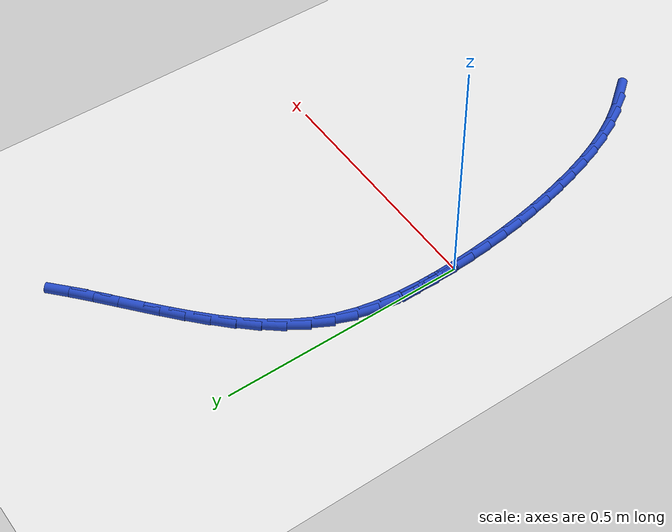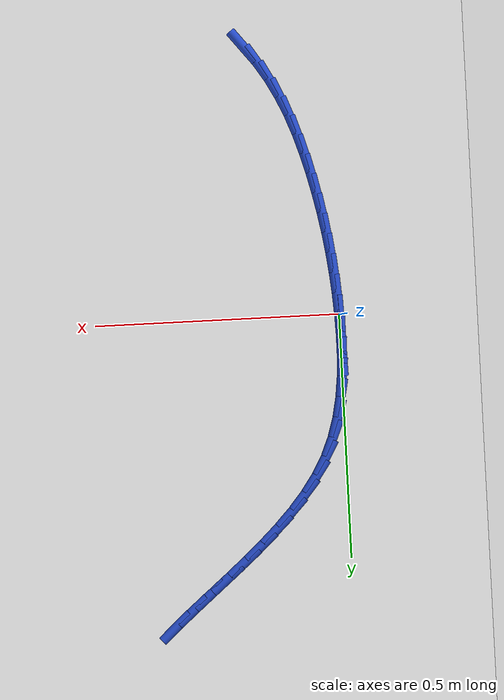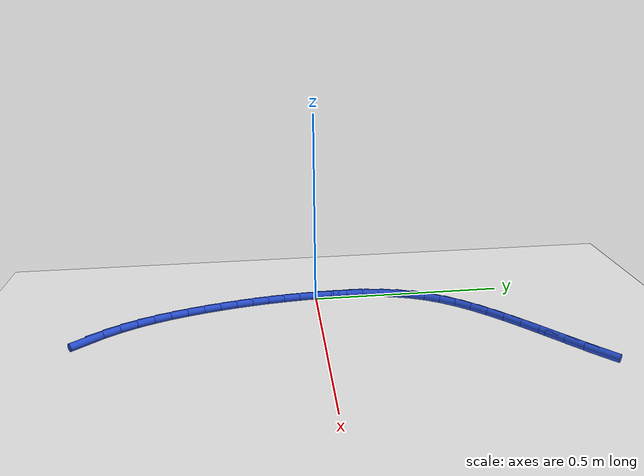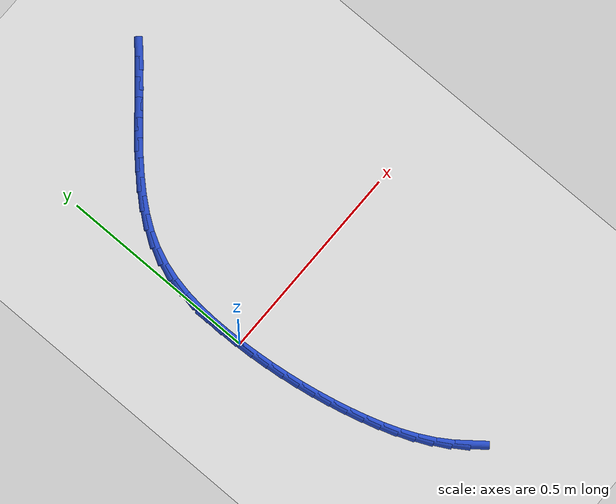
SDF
<sdf version="1.6">
 <world name="default">
  <model name="ground_plane">
   <static>1</static>
   <link name="link">
    <collision name="collision">
     <geometry><plane><normal>0 0 1</normal><size>100 100</size></plane></geometry>
     <surface><friction><ode><mu>100</mu><mu2>50</mu2></ode></friction></surface>
    </collision>
    <visual name="visual">
     <cast_shadows>0</cast_shadows>
     <geometry><plane><normal>0 0 1</normal><size>100 100</size></plane></geometry>
     <material>
      <script><uri>file://media/materials/scripts/gazebo.material</uri><name>Gazebo/WhiteGlow</name></script>
     </material>
    </visual>
   </link>
  </model>
  <model name="line">
   <link name="link_0">
    <pose>-1.0842021724855044e-17 3.469446951953614e-17 0.01 0 1.57 -1.5368988126078118</pose>
    <collision name="collision">
     <geometry><cylinder><radius>0.01</radius><length>0.08</length></cylinder></geometry>
    </collision>
    <visual name="visual">
     <material>
      <script><name>Gazebo/Blue</name><uri>file://media/materials/scripts/gazebo.material</uri></script>
     </material>
     <geometry><cylinder><radius>0.01</radius><length>0.08</length></cylinder></geometry>
    </visual>
   </link>
   <link name="link_1">
    <pose>-0.0014516715959143498 0.04280890731460777 0.01 0 1.57 1.5659585013162598</pose>
    <collision name="collision">
     <geometry><cylinder><radius>0.01</radius><length>0.08</length></cylinder></geometry>
    </collision>
    <visual name="visual">
     <material>
      <script><name>Gazebo/Blue</name><uri>file://media/materials/scripts/gazebo.material</uri></script>
     </material>
     <geometry><cylinder><radius>0.01</radius><length>0.08</length></cylinder></geometry>
    </visual>
   </link>
   <link name="link_2">
    <pose>-0.0012441022626019952 0.08571407511581058 0.01 0 1.57 1.5150028420982957</pose>
    <collision name="collision">
     <geometry><cylinder><radius>0.01</radius><length>0.08</length></cylinder></geometry>
    </collision>
    <visual name="visual">
     <material>
      <script><name>Gazebo/Blue</name><uri>file://media/materials/scripts/gazebo.material</uri></script>
     </material>
     <geometry><cylinder><radius>0.01</radius><length>0.08</length></cylinder></geometry>
    </visual>
   </link>
   <link name="link_3">
    <pose>0.0011413706140954126 0.1284251034618987 0.01 0 1.57 1.451020490607723</pose>
    <collision name="collision">
     <geometry><cylinder><radius>0.01</radius><length>0.08</length></cylinder></geometry>
    </collision>
    <visual name="visual">
     <material>
      <script><name>Gazebo/Blue</name><uri>file://media/materials/scripts/gazebo.material</uri></script>
     </material>
     <geometry><cylinder><radius>0.01</radius><length>0.08</length></cylinder></geometry>
    </visual>
   </link>
   <link name="link_4">
    <pose>0.006223409648336242 0.1706515924111626 0.01 0 1.57 1.373239372330549</pose>
    <collision name="collision">
     <geometry><cylinder><radius>0.01</radius><length>0.08</length></cylinder></geometry>
    </collision>
    <visual name="visual">
     <material>
      <script><name>Gazebo/Blue</name><uri>file://media/materials/scripts/gazebo.material</uri></script>
     </material>
     <geometry><cylinder><radius>0.01</radius><length>0.08</length></cylinder></geometry>
    </visual>
   </link>
   <link name="link_5">
    <pose>0.014520677454278857 0.2121031420218925 0.01 0 1.57 1.2812648131036974</pose>
    <collision name="collision">
     <geometry><cylinder><radius>0.01</radius><length>0.08</length></cylinder></geometry>
    </collision>
    <visual name="visual">
     <material>
      <script><name>Gazebo/Blue</name><uri>file://media/materials/scripts/gazebo.material</uri></script>
     </material>
     <geometry><cylinder><radius>0.01</radius><length>0.08</length></cylinder></geometry>
    </visual>
   </link>
   <link name="link_6">
    <pose>0.026551836646081607 0.2524893523523788 0.01 0 1.57 1.175546476682977</pose>
    <collision name="collision">
     <geometry><cylinder><radius>0.01</radius><length>0.08</length></cylinder></geometry>
    </collision>
    <visual name="visual">
     <material>
      <script><name>Gazebo/Blue</name><uri>file://media/materials/scripts/gazebo.material</uri></script>
     </material>
     <geometry><cylinder><radius>0.01</radius><length>0.08</length></cylinder></geometry>
    </visual>
   </link>
   <link name="link_7">
    <pose>0.04283554983790288 0.29151982346091176 0.01 0 1.57 1.0616055408451468</pose>
    <collision name="collision">
     <geometry><cylinder><radius>0.01</radius><length>0.08</length></cylinder></geometry>
    </collision>
    <visual name="visual">
     <material>
      <script><name>Gazebo/Blue</name><uri>file://media/materials/scripts/gazebo.material</uri></script>
     </material>
     <geometry><cylinder><radius>0.01</radius><length>0.08</length></cylinder></geometry>
    </visual>
   </link>
   <link name="link_8">
    <pose>0.0637421741857241 0.32896697450251255 0.01 0 1.57 0.9607841583377517</pose>
    <collision name="collision">
     <geometry><cylinder><radius>0.01</radius><length>0.08</length></cylinder></geometry>
    </collision>
    <visual name="visual">
     <material>
      <script><name>Gazebo/Blue</name><uri>file://media/materials/scripts/gazebo.material</uri></script>
     </material>
     <geometry><cylinder><radius>0.01</radius><length>0.08</length></cylinder></geometry>
    </visual>
   </link>
   <link name="link_9">
    <pose>0.08887635882780928 0.36492756256705516 0.01 0 1.57 0.8790603935980738</pose>
    <collision name="collision">
     <geometry><cylinder><radius>0.01</radius><length>0.08</length></cylinder></geometry>
    </collision>
    <visual name="visual">
     <material>
      <script><name>Gazebo/Blue</name><uri>file://media/materials/scripts/gazebo.material</uri></script>
     </material>
     <geometry><cylinder><radius>0.01</radius><length>0.08</length></cylinder></geometry>
    </visual>
   </link>
   <link name="link_10">
    <pose>0.11759635489456768 0.39960271379785206 0.01 0 1.57 0.8149191896149264</pose>
    <collision name="collision">
     <geometry><cylinder><radius>0.01</radius><length>0.08</length></cylinder></geometry>
    </collision>
    <visual name="visual">
     <material>
      <script><name>Gazebo/Blue</name><uri>file://media/materials/scripts/gazebo.material</uri></script>
     </material>
     <geometry><cylinder><radius>0.01</radius><length>0.08</length></cylinder></geometry>
    </visual>
   </link>
   <link name="link_11">
    <pose>0.14926029587340603 0.43319360416933617 0.01 0 1.57 0.7665292209427014</pose>
    <collision name="collision">
     <geometry><cylinder><radius>0.01</radius><length>0.08</length></cylinder></geometry>
    </collision>
    <visual name="visual">
     <material>
      <script><name>Gazebo/Blue</name><uri>file://media/materials/scripts/gazebo.material</uri></script>
     </material>
     <geometry><cylinder><radius>0.01</radius><length>0.08</length></cylinder></geometry>
    </visual>
   </link>
   <link name="link_12">
    <pose>0.18322631525173097 0.46590140965594046 0.01 0 1.57 0.7322299686839594</pose>
    <collision name="collision">
     <geometry><cylinder><radius>0.01</radius><length>0.08</length></cylinder></geometry>
    </collision>
    <visual name="visual">
     <material>
      <script><name>Gazebo/Blue</name><uri>file://media/materials/scripts/gazebo.material</uri></script>
     </material>
     <geometry><cylinder><radius>0.01</radius><length>0.08</length></cylinder></geometry>
    </visual>
   </link>
   <link name="link_13">
    <pose>0.21885254651694955 0.4979273062320981 0.01 0 1.57 0.7107544021208096</pose>
    <collision name="collision">
     <geometry><cylinder><radius>0.01</radius><length>0.08</length></cylinder></geometry>
    </collision>
    <visual name="visual">
     <material>
      <script><name>Gazebo/Blue</name><uri>file://media/materials/scripts/gazebo.material</uri></script>
     </material>
     <geometry><cylinder><radius>0.01</radius><length>0.08</length></cylinder></geometry>
    </visual>
   </link>
   <link name="link_14">
    <pose>0.2554971231564685 0.529472469872242 0.01 0 1.57 0.7013132477878615</pose>
    <collision name="collision">
     <geometry><cylinder><radius>0.01</radius><length>0.08</length></cylinder></geometry>
    </collision>
    <visual name="visual">
     <material>
      <script><name>Gazebo/Blue</name><uri>file://media/materials/scripts/gazebo.material</uri></script>
     </material>
     <geometry><cylinder><radius>0.01</radius><length>0.08</length></cylinder></geometry>
    </visual>
   </link>
   <link name="link_15">
    <pose>0.2925181786576945 0.5607380765508049 0.01 0 1.57 0.7036232488913202</pose>
    <collision name="collision">
     <geometry><cylinder><radius>0.01</radius><length>0.08</length></cylinder></geometry>
    </collision>
    <visual name="visual">
     <material>
      <script><name>Gazebo/Blue</name><uri>file://media/materials/scripts/gazebo.material</uri></script>
     </material>
     <geometry><cylinder><radius>0.01</radius><length>0.08</length></cylinder></geometry>
    </visual>
   </link>
   <link name="link_16">
    <pose>0.32927384650803443 0.5919253022422201 0.01 0 1.57 0.7179233418604293</pose>
    <collision name="collision">
     <geometry><cylinder><radius>0.01</radius><length>0.08</length></cylinder></geometry>
    </collision>
    <visual name="visual">
     <material>
      <script><name>Gazebo/Blue</name><uri>file://media/materials/scripts/gazebo.material</uri></script>
     </material>
     <geometry><cylinder><radius>0.01</radius><length>0.08</length></cylinder></geometry>
    </visual>
   </link>
   <link name="link_17">
    <pose>0.365122260194895 0.6232353229209202 0.01 0 1.57 0.7449959446812255</pose>
    <collision name="collision">
     <geometry><cylinder><radius>0.01</radius><length>0.08</length></cylinder></geometry>
    </collision>
    <visual name="visual">
     <material>
      <script><name>Gazebo/Blue</name><uri>file://media/materials/scripts/gazebo.material</uri></script>
     </material>
     <geometry><cylinder><radius>0.01</radius><length>0.08</length></cylinder></geometry>
    </visual>
   </link>
   <link name="link_196">
    <pose>0.1688625292400144 -0.5577887529311956 0.01 0 1.57 -0.9041922956521972</pose>
    <collision name="collision">
     <geometry><cylinder><radius>0.01</radius><length>0.08</length></cylinder></geometry>
    </collision>
    <visual name="visual">
     <material>
      <script><name>Gazebo/Blue</name><uri>file://media/materials/scripts/gazebo.material</uri></script>
     </material>
     <geometry><cylinder><radius>0.01</radius><length>0.08</length></cylinder></geometry>
    </visual>
   </link>
   <link name="link_197">
    <pose>0.14220924033724142 -0.5239106753382171 0.01 0 1.57 -0.9978337761902151</pose>
    <collision name="collision">
     <geometry><cylinder><radius>0.01</radius><length>0.08</length></cylinder></geometry>
    </collision>
    <visual name="visual">
     <material>
      <script><name>Gazebo/Blue</name><uri>file://media/materials/scripts/gazebo.material</uri></script>
     </material>
     <geometry><cylinder><radius>0.01</radius><length>0.08</length></cylinder></geometry>
    </visual>
   </link>
   <link name="link_198">
    <pose>0.11912864292000744 -0.4881354672316448 0.01 0 1.57 -1.081473967997721</pose>
    <collision name="collision">
     <geometry><cylinder><radius>0.01</radius><length>0.08</length></cylinder></geometry>
    </collision>
    <visual name="visual">
     <material>
      <script><name>Gazebo/Blue</name><uri>file://media/materials/scripts/gazebo.material</uri></script>
     </material>
     <geometry><cylinder><radius>0.01</radius><length>0.08</length></cylinder></geometry>
    </visual>
   </link>
   <link name="link_199">
    <pose>0.09922705896481115 -0.4507628659768967 0.01 0 1.57 -1.1540961151325655</pose>
    <collision name="collision">
     <geometry><cylinder><radius>0.01</radius><length>0.08</length></cylinder></geometry>
    </collision>
    <visual name="visual">
     <material>
      <script><name>Gazebo/Blue</name><uri>file://media/materials/scripts/gazebo.material</uri></script>
     </material>
     <geometry><cylinder><radius>0.01</radius><length>0.08</length></cylinder></geometry>
    </visual>
   </link>
   <link name="link_200">
    <pose>0.08211081044815109 -0.41209260893939126 0.01 0 1.57 -1.2153665389309822</pose>
    <collision name="collision">
     <geometry><cylinder><radius>0.01</radius><length>0.08</length></cylinder></geometry>
    </collision>
    <visual name="visual">
     <material>
      <script><name>Gazebo/Blue</name><uri>file://media/materials/scripts/gazebo.material</uri></script>
     </material>
     <geometry><cylinder><radius>0.01</radius><length>0.08</length></cylinder></geometry>
    </visual>
   </link>
   <link name="link_201">
    <pose>0.0673862193465258 -0.3724244334845463 0.01 0 1.57 -1.2653828971131171</pose>
    <collision name="collision">
     <geometry><cylinder><radius>0.01</radius><length>0.08</length></cylinder></geometry>
    </collision>
    <visual name="visual">
     <material>
      <script><name>Gazebo/Blue</name><uri>file://media/materials/scripts/gazebo.material</uri></script>
     </material>
     <geometry><cylinder><radius>0.01</radius><length>0.08</length></cylinder></geometry>
    </visual>
   </link>
   <link name="link_202">
    <pose>0.05465960763643354 -0.332058076977779 0.01 0 1.57 -1.3044394828104373</pose>
    <collision name="collision">
     <geometry><cylinder><radius>0.01</radius><length>0.08</length></cylinder></geometry>
    </collision>
    <visual name="visual">
     <material>
      <script><name>Gazebo/Blue</name><uri>file://media/materials/scripts/gazebo.material</uri></script>
     </material>
     <geometry><cylinder><radius>0.01</radius><length>0.08</length></cylinder></geometry>
    </visual>
   </link>
   <link name="link_203">
    <pose>0.043537335722094936 -0.29129324264333595 0.01 0 1.57 -1.3350975460650831</pose>
    <collision name="collision">
     <geometry><cylinder><radius>0.01</radius><length>0.08</length></cylinder></geometry>
    </collision>
    <visual name="visual">
     <material>
      <script><name>Gazebo/Blue</name><uri>file://media/materials/scripts/gazebo.material</uri></script>
     </material>
     <geometry><cylinder><radius>0.01</radius><length>0.08</length></cylinder></geometry>
    </visual>
   </link>
   <link name="link_204">
    <pose>0.03370624915199432 -0.25035812654443124 0.01 0 1.57 -1.3644552816752824</pose>
    <collision name="collision">
     <geometry><cylinder><radius>0.01</radius><length>0.08</length></cylinder></geometry>
    </collision>
    <visual name="visual">
     <material>
      <script><name>Gazebo/Blue</name><uri>file://media/materials/scripts/gazebo.material</uri></script>
     </material>
     <geometry><cylinder><radius>0.01</radius><length>0.08</length></cylinder></geometry>
    </visual>
   </link>
   <link name="link_205">
    <pose>0.025103309621281242 -0.20925870863546772 0.01 0 1.57 -1.3937531680699686</pose>
    <collision name="collision">
     <geometry><cylinder><radius>0.01</radius><length>0.08</length></cylinder></geometry>
    </collision>
    <visual name="visual">
     <material>
      <script><name>Gazebo/Blue</name><uri>file://media/materials/scripts/gazebo.material</uri></script>
     </material>
     <geometry><cylinder><radius>0.01</radius><length>0.08</length></cylinder></geometry>
    </visual>
   </link>
   <link name="link_206">
    <pose>0.017713922342569143 -0.16795792914673774 0.01 0 1.57 -1.4228588733678604</pose>
    <collision name="collision">
     <geometry><cylinder><radius>0.01</radius><length>0.08</length></cylinder></geometry>
    </collision>
    <visual name="visual">
     <material>
      <script><name>Gazebo/Blue</name><uri>file://media/materials/scripts/gazebo.material</uri></script>
     </material>
     <geometry><cylinder><radius>0.01</radius><length>0.08</length></cylinder></geometry>
    </visual>
   </link>
   <link name="link_207">
    <pose>0.011523492528471495 -0.12641872830853354 0.01 0 1.57 -1.4516431189109917</pose>
    <collision name="collision">
     <geometry><cylinder><radius>0.01</radius><length>0.08</length></cylinder></geometry>
    </collision>
    <visual name="visual">
     <material>
      <script><name>Gazebo/Blue</name><uri>file://media/materials/scripts/gazebo.material</uri></script>
     </material>
     <geometry><cylinder><radius>0.01</radius><length>0.08</length></cylinder></geometry>
    </visual>
   </link>
   <link name="link_208">
    <pose>0.006517425391601772 -0.0846040463511476 0.01 0 1.57 -1.4799821943969917</pose>
    <collision name="collision">
     <geometry><cylinder><radius>0.01</radius><length>0.08</length></cylinder></geometry>
    </collision>
    <visual name="visual">
     <material>
      <script><name>Gazebo/Blue</name><uri>file://media/materials/scripts/gazebo.material</uri></script>
     </material>
     <geometry><cylinder><radius>0.01</radius><length>0.08</length></cylinder></geometry>
    </visual>
   </link>
   <link name="link_209">
    <pose>0.002681126144573362 -0.04247682350487119 0.01 0 1.57 -1.5077602100494594</pose>
    <collision name="collision">
     <geometry><cylinder><radius>0.01</radius><length>0.08</length></cylinder></geometry>
    </collision>
    <visual name="visual">
     <material>
      <script><name>Gazebo/Blue</name><uri>file://media/materials/scripts/gazebo.material</uri></script>
     </material>
     <geometry><cylinder><radius>0.01</radius><length>0.08</length></cylinder></geometry>
    </visual>
   </link>
   <link name="link_210">
    <pose>-3.5561831257524545e-17 2.706168622523819e-16 0.01 0 1.57 -1.5348709919351866</pose>
    <collision name="collision">
     <geometry><cylinder><radius>0.01</radius><length>0.08</length></cylinder></geometry>
    </collision>
    <visual name="visual">
     <material>
      <script><name>Gazebo/Blue</name><uri>file://media/materials/scripts/gazebo.material</uri></script>
     </material>
     <geometry><cylinder><radius>0.01</radius><length>0.08</length></cylinder></geometry>
    </visual>
   </link>
   <link name="link_211">
    <pose>-0.0015405478295051841 0.04286348393317741 0.01 0 1.57 -1.5612195561022963</pose>
    <collision name="collision">
     <geometry><cylinder><radius>0.01</radius><length>0.08</length></cylinder></geometry>
    </collision>
    <visual name="visual">
     <material>
      <script><name>Gazebo/Blue</name><uri>file://media/materials/scripts/gazebo.material</uri></script>
     </material>
     <geometry><cylinder><radius>0.01</radius><length>0.08</length></cylinder></geometry>
    </visual>
   </link>
   <link name="link_212">
    <pose>-0.001955112131328533 0.08615068806436893 0.01 0 1.57 -1.548106123884597</pose>
    <collision name="collision">
     <geometry><cylinder><radius>0.01</radius><length>0.08</length></cylinder></geometry>
    </collision>
    <visual name="visual">
     <material>
      <script><name>Gazebo/Blue</name><uri>file://media/materials/scripts/gazebo.material</uri></script>
     </material>
     <geometry><cylinder><radius>0.01</radius><length>0.08</length></cylinder></geometry>
    </visual>
   </link>
  </model>
 </world>
</sdf>
